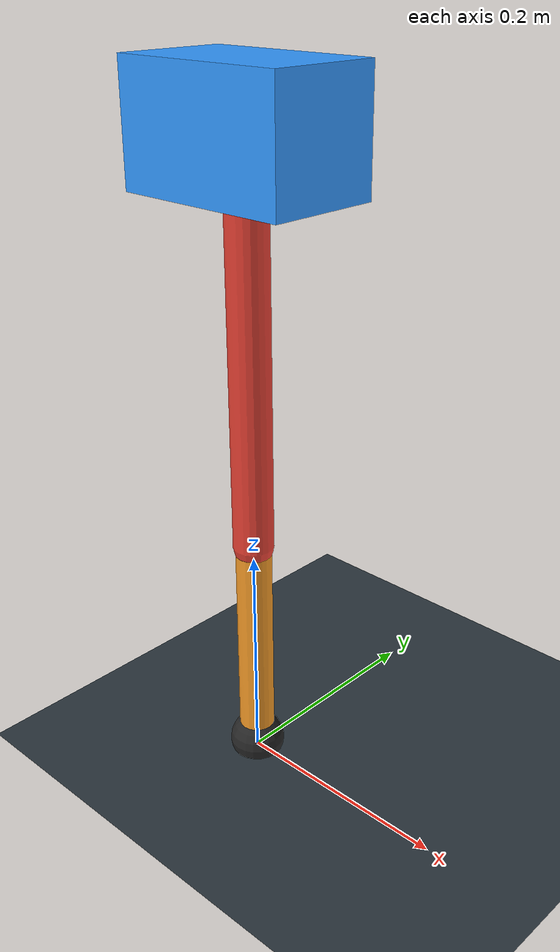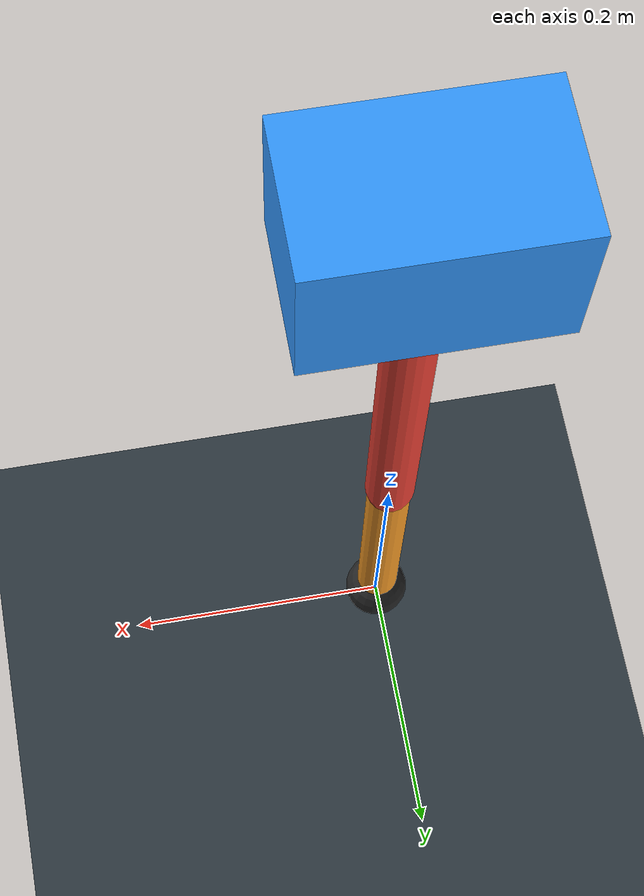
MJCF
<mujoco model="single_axis_two_bar">
  <compiler angle="radian" inertiafromgeom="true"/>
  <option timestep="0.001" integrator="implicitfast" gravity="0 0 -9.81"/>
  <default>
    <joint damping="0.08"/>
    <geom friction="1.2 0.01 0.0001" condim="3"/>
  </default>
  <worldbody>
    <geom name="floor" type="plane" size="5 5 0.1" rgba="0.18 0.22 0.25 1"/>
    <body name="carriage" pos="0 0 0.5634874014226798">
      <joint name="pole_slide" type="slide" axis="0 0 1"/>
      <geom name="payload" type="box" size="0.08 0.05 0.05" mass="2.9591030126135363" rgba="0.2 0.6 1 1"/>
      <body name="thigh" pos="0 0 0">
        <joint name="hip" type="hinge" axis="0 1 0"/>
        <geom name="thigh_link" type="capsule" fromto="0 0 0 0 0 -0.3498694840546417" size="0.018" mass="0.2492866305062739" rgba="0.9 0.25 0.2 1"/>
        <body name="shank" pos="0 0 -0.3498694840546417">
          <joint name="knee" type="hinge" axis="0 1 0"/>
          <geom name="shank_link" type="capsule" fromto="0 0 0 0 0 -0.20527216689657463" size="0.016" mass="0.1462591313461815" rgba="0.95 0.6 0.15 1"/>
          <geom name="foot" type="sphere" pos="0 0 -0.20527216689657463" size="0.025" mass="0.03" rgba="0.15 0.15 0.15 1"/>
          <site name="toe" pos="0 0 -0.20527216689657463" size="0.008"/>
        </body>
      </body>
    </body>
  </worldbody>
  <actuator>
    <motor name="hip_motor" joint="hip" ctrlrange="-19.68421245880382 19.68421245880382"/>
    <motor name="knee_motor" joint="knee" ctrlrange="-53.53610886983707 53.53610886983707"/>
  </actuator>
</mujoco>
